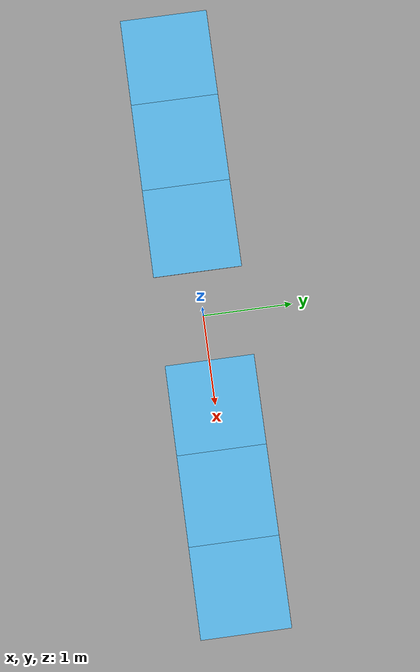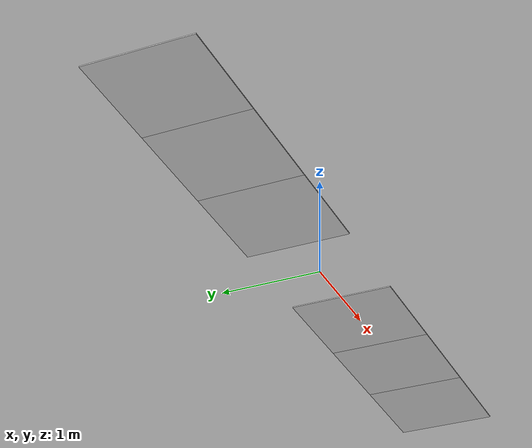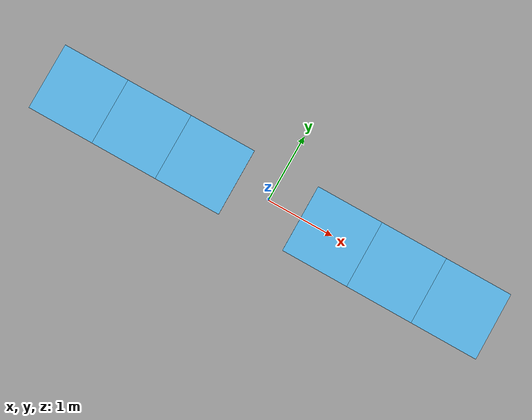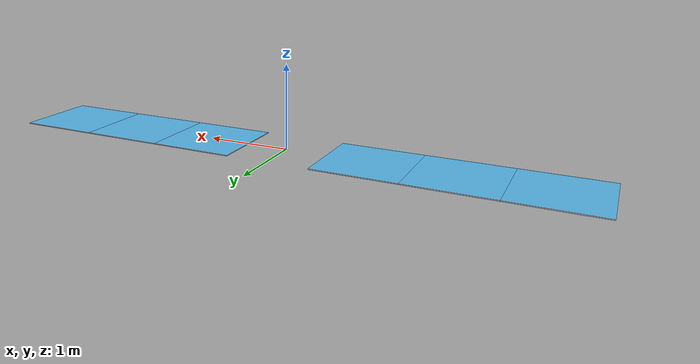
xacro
<?xml version="1.0"?>
<robot xmlns:xacro="http://www.ros.org/wiki/xacro" name="robot">

  <!-- Define constants and macros if needed -->
  <xacro:property name="mesh_filename_1" value="$(find aruco_cube)/meshes/face_1.dae"/>
  <xacro:property name="mesh_filename_2" value="$(find aruco_cube)/meshes/face_2.dae"/>
  <xacro:property name="mesh_filename_3" value="$(find aruco_cube)/meshes/face_3.dae"/>
  <xacro:property name="mesh_filename_4" value="$(find aruco_cube)/meshes/face_4.dae"/>
  <xacro:property name="mesh_filename_5" value="$(find aruco_cube)/meshes/face_5.dae"/>
  <xacro:property name="mesh_filename_6" value="$(find aruco_cube)/meshes/face_6.dae"/>
  <xacro:property name="mesh_scale" value="0.5"/>

  <!-- World tag-->
  <link name="my_world"></link>

  <!-- The base origin is offset from the world origin. -->
  <joint name="base_joint" type="fixed">
    <origin xyz="0 0 0" rpy="0 0 0"/>
    <parent link="my_world"/>
    <child link="textured_link"/>
  </joint>

  <link name="textured_link">
    <visual>
    <origin xyz="-3 0 0"/>
      <geometry>
        <mesh filename="${mesh_filename_1}" scale="${mesh_scale} ${mesh_scale} ${mesh_scale}"/>
      </geometry>
    </visual>
    <visual>
    <origin xyz="-2 0 0"/>
      <geometry>
        <mesh filename="${mesh_filename_2}" scale="${mesh_scale} ${mesh_scale} ${mesh_scale}"/>
      </geometry>
    </visual>
    <visual>
    <origin xyz="-1 0 0"/>
      <geometry>
        <mesh filename="${mesh_filename_3}" scale="${mesh_scale} ${mesh_scale} ${mesh_scale}"/>
      </geometry>
    </visual>
    <visual>
    <origin xyz="1 0 0"/>
      <geometry>
        <mesh filename="${mesh_filename_4}" scale="${mesh_scale} ${mesh_scale} ${mesh_scale}"/>
      </geometry>
    </visual>
    <visual>
    <origin xyz="2 0 0"/>
      <geometry>
        <mesh filename="${mesh_filename_5}" scale="${mesh_scale} ${mesh_scale} ${mesh_scale}"/>
      </geometry>
    </visual>
    <visual>
    <origin xyz="3 0 0"/>
      <geometry>
        <mesh filename="${mesh_filename_6}" scale="${mesh_scale} ${mesh_scale} ${mesh_scale}"/>
      </geometry>
    </visual>
    <inertial>
      <origin xyz="0 0 0"/>
      <mass value="1.0"/>
      <inertia ixx="0.1" ixy="0.0" ixz="0.0" iyy="0.1" iyz="0.0" izz="0.1"/>
    </inertial>
  </link>
</robot>
